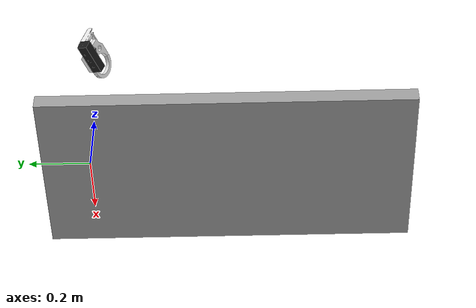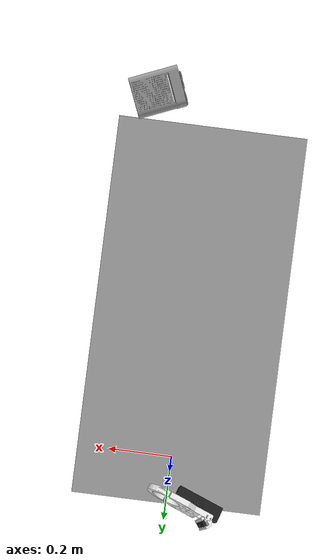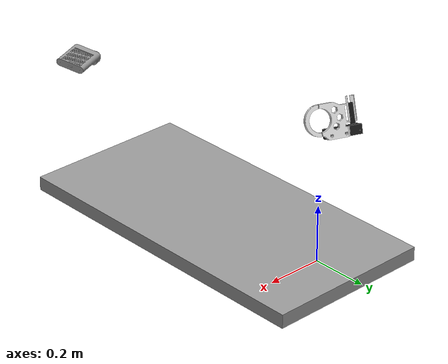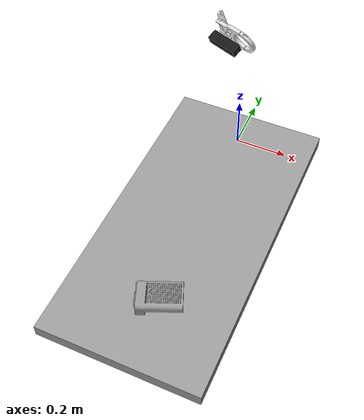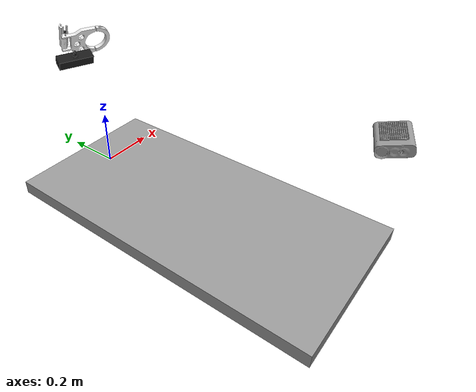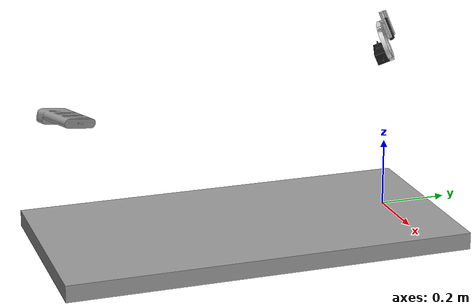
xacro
<?xml version="1.0"?>
<robot xmlns:xacro="http://www.ros.org/wiki/xacro"
      name="azure_test">>

  <!-- Add sensor -->
  <xacro:include filename="$(find azure_description)/urdf/azure_sensor.urdf.xacro" />

  <link name="world" />

  <link name="table">
    <visual>
      <origin rpy="0 0 0" xyz="0 -0.45 -0.03"/>
      <geometry>
        <box size="0.6 1.2 0.05"/>
      </geometry>
      <material name="grey"/>
    </visual>
    <surface>
      <friction>
        <ode>
          <mu>5</mu>
          <mu2>5</mu2>\
        </ode>
      </friction>
    </surface>
    <collision name='camera_collision'>
      <origin rpy="0 0 0" xyz="0 -0.45 -0.03"/>
      <geometry>
        <box size="0.6 1.2 0.05"/>
      </geometry>
    </collision>
  </link>

  <joint name="world_table_joint" type="fixed">
    <parent link="world"/>
    <child link="table"/>
  </joint>

  <joint type="fixed" name="table_camera_joint">
    <origin xyz="0.15 -1 0.41" rpy="0.2 0 3.54"/>
    <child link="v1_camera_mount_link"/>
    <parent link="table"/>
    <axis xyz="0 0 0" rpy="0 0 0"/>
    <limit effort="10000" velocity="1000"/>
    <dynamics damping="1.0" friction="1.0"/>
  </joint>

  <xacro:azure_sensor prefix="v1_"/>

    <xacro:include filename="$(find mobipick_description)/urdf/sensors/gripper_cam.urdf.xacro" />

  <joint name="v1_sensor_mount_joint" type="fixed">
    <origin xyz="0.0 0.0 .505" rpy="0.0 ${-3.14/8} 1.2" />
    <child link="v1_sensor_mount_link"/>
    <parent link="table"/>
  </joint>

  <xacro:gripper_cam prefix="v1_" />

</robot>

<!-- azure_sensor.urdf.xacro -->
<!-- From dimensions given at https://docs.microsoft.com/en-us/azure/kinect-dk/media/resources/hardware-specs-media/dimensions.png -->
<robot xmlns:xacro="http://www.ros.org/wiki/xacro" name="azure_sensor">

  <xacro:include filename="$(find azure_description)/urdf/azure_sensor.gazebo.xacro" />
  <xacro:property name="M_PI" value="3.1415926535897931" />

    <xacro:macro name="azure_sensor" params="prefix">

      <material name="grey">
        <color rgba="0.6 0.6 0.6 1" />
      </material>

      <link name="${prefix}camera_mount_link">
        <inertial>
          <origin
            xyz="0 0 0"
            rpy="0 0 0" />
          <mass
            value="0.440" />
          <inertia
            ixx="0.00063789"
            ixy="0"
            ixz="0"
            iyy="0.000444"
            iyz="0"
            izz="0.00097111" />
        </inertial>

        <visual>

          <origin
            xyz="0.062 0 0"
            rpy="0 0 ${M_PI/2}" />

          <geometry>
            <mesh
            filename="package://azure_description/meshes/base_link.STL" />
          </geometry>

<!-- for testing if mesh box visually looks in the right place -->

          <material name="grey" />
        </visual>

        <collision>

          <origin
            xyz="0 0 0"
            rpy="0 0 ${M_PI/2}" />

          <geometry>
            <box size="0.11 0.13 0.045" />
          </geometry>
        </collision>
      </link>

      <joint name="${prefix}azure_sensor_depth_joint" type="fixed">
        <origin rpy="0 0 0" xyz=".062 -0.0005  0.0068"/>
        <parent link="${prefix}camera_mount_link"/>
        <child link="${prefix}azure_sensor_depth_link"/>
      </joint>

      <link name="${prefix}azure_sensor_depth_link">
      </link>

      <joint name="${prefix}azure_sensor_rgb_joint" type="fixed">
        <origin rpy="0 0 0" xyz="0.062 -.0320 0"/>
        <parent link="${prefix}camera_mount_link"/>
        <child link="${prefix}azure_sensor_rgb_link"/>
      </joint>

      <link name="${prefix}azure_sensor_rgb_link">
      </link>

      <!-- kinect2 depth sensor frame -->
      <joint name="${prefix}azure_sensor_depth_optical_frame_joint" type="fixed">

        <origin xyz="0 0 0"
                rpy="${-M_PI/2+0} ${0.0+0}         ${-M_PI/2+0}"/>

        <parent link="${prefix}azure_sensor_depth_link"/>
        <child link="${prefix}azure_sensor_depth_optical_frame"/>
      </joint>

          <!-- kinect2 rgb sensor frame -->
      <joint name="${prefix}azure_sensor_rgb_optical_frame_joint" type="fixed">

        <origin xyz="0 0 0"
                rpy="${-M_PI/2+0} ${0.0+0}         ${-M_PI/2+0}" />

        <parent link="${prefix}azure_sensor_rgb_link"/>
        <child link="${prefix}azure_sensor_rgb_optical_frame"/>
      </joint>

      <link name="${prefix}azure_sensor_rgb_optical_frame"/>
      <link name="${prefix}azure_sensor_depth_optical_frame"/>

      <xacro:azure_sensor_rgb_gazebo
        link_name="${prefix}azure_sensor_rgb_link"
        frame_name="${prefix}azure_sensor_rgb_optical_frame"
        camera_name="${prefix}azure_sensor" />

      <xacro:azure_sensor_depth_gazebo
        link_name="${prefix}azure_sensor_depth_link"
        frame_name="${prefix}azure_sensor_depth_optical_frame"
        camera_name="${prefix}azure_sensor" />

  </xacro:macro>

</robot>

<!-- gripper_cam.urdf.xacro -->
<robot xmlns:xacro="http://ros.org/wiki/xacro">
  <xacro:include filename="$(find mobipick_description)/urdf/common_properties.urdf.xacro" />

  <xacro:property name="sensor_mount_mass" value="0.060" />
  <xacro:property name="sensor_mount_bracket_mass" value="0.040" />
  <xacro:property name="sensor_mount_pico_holder_mass" value="0.020" />
  <xacro:property name="astra_s_mass" value="0.300" />
  <xacro:property name="pico_flexx_mass" value="0.008" />

  <!-- distance between center of camera and camera_link -->
  <xacro:property name="astra_cam_py" value="0.0485"/>

  <xacro:macro name="gripper_cam" params="prefix">
    <xacro:sensor_mount prefix="${prefix}" />
    <joint name="${prefix}eef_main_cam_joint" type="fixed">
      <origin xyz="-0.032 0.033 -0.065" rpy="${pi/2} ${pi/2} ${-pi/2}" />
      <parent link="${prefix}sensor_mount_link"/>
      <child link="${prefix}eef_main_cam_link"/>
    </joint>

    <xacro:sensor_astra_mini_s camera_name="eef_main_cam" prefix="${prefix}" />

    <joint name="${prefix}eef_forward_cam_joint" type="fixed">
      <origin xyz="0.01545 0.0001 0.008" rpy="${-pi/2} 0.0 -0.03650298564336946" />
      <parent link="${prefix}sensor_mount_pico_holder_link"/>
      <child link="${prefix}eef_forward_cam_link"/>
    </joint>

    <xacro:sensor_pico_flexx camera_name="eef_forward_cam" prefix="${prefix}" />
  </xacro:macro>

  <xacro:macro name="sensor_mount" params="prefix">
    <link name="${prefix}sensor_mount_link">
      <visual>
        <geometry>
          <mesh filename="package://mobipick_description/meshes/sensors/sensor_mount.stl" scale="0.001 0.001 0.001" />
        </geometry>
        <xacro:insert_block name="material_almost_white" />
      </visual>
      <collision>
        <geometry>
          <mesh filename="package://mobipick_description/meshes/sensors/sensor_mount.stl" scale="0.001 0.001 0.001" />
        </geometry>
      </collision>
      <inertial>
        <mass value="${sensor_mount_mass}" />
        <origin xyz="-0.006815249 0.054455677 -0.011470736" rpy="0 0 0" />
        <inertia ixx="${sensor_mount_mass * 0.0018998439}"
          ixy="${sensor_mount_mass * 0.0000011290362}"
          ixz="${sensor_mount_mass * -0.000004403006}"
          iyy="${sensor_mount_mass * 0.0013046557}"
          iyz="${sensor_mount_mass * 0.00004099457}"
          izz="${sensor_mount_mass * 0.00062646503}" />
      </inertial>
    </link>
    <gazebo reference="${prefix}sensor_mount_link">
      <material>Gazebo/Grey</material>
    </gazebo>

    <joint name="${prefix}sensor_mount_bracket_joint" type="fixed">
      <origin xyz="0 0 0" rpy="0 0 0" />
      <parent link="${prefix}sensor_mount_link"/>
      <child link="${prefix}sensor_mount_bracket_link" />
    </joint>

    <link name="${prefix}sensor_mount_bracket_link">
      <visual>
        <geometry>
          <mesh filename="package://mobipick_description/meshes/sensors/sensor_mount_bracket.stl" scale="0.001 0.001 0.001" />
        </geometry>
        <xacro:insert_block name="material_almost_white" />
      </visual>
      <collision>
        <geometry>
          <mesh filename="package://mobipick_description/meshes/sensors/sensor_mount_bracket.stl" scale="0.001 0.001 0.001" />
        </geometry>
      </collision>
      <inertial>
        <mass value="${sensor_mount_bracket_mass}" />
        <origin xyz="-0.006750000 -0.030390745 0.000000062" rpy="0 0 0" />
        <inertia ixx="${sensor_mount_bracket_mass * 0.0010335255}"
          ixy="${sensor_mount_bracket_mass * 0.00000001092523}"
          ixz="${sensor_mount_bracket_mass * -0.00000012318317}"
          iyy="${sensor_mount_bracket_mass * 0.00087473292}"
          iyz="${sensor_mount_bracket_mass * -0.000000049903018}"
          izz="${sensor_mount_bracket_mass * 0.00019156915}" />
      </inertial>
    </link>
    <gazebo reference="${prefix}sensor_mount_bracket_link">
      <material>Gazebo/Grey</material>
    </gazebo>

    <joint name="${prefix}sensor_mount_pico_holder_joint" type="fixed">
      <origin xyz="-0.00325 0.11187 0" rpy="0 0 ${-33.5 / 180.0 * pi}" /> <!-- angle can be adjusted from -15 to -50 degrees (corresponds to downward angle of the pico flexx) -->
      <parent link="${prefix}sensor_mount_link"/>
      <child link="${prefix}sensor_mount_pico_holder_link" />
    </joint>

    <link name="${prefix}sensor_mount_pico_holder_link">
      <visual>
        <geometry>
          <mesh filename="package://mobipick_description/meshes/sensors/sensor_mount_pico_holder.stl" scale="0.001 0.001 0.001" />
        </geometry>
        <xacro:insert_block name="material_almost_white" />
      </visual>
      <collision>
        <geometry>
          <mesh filename="package://mobipick_description/meshes/sensors/sensor_mount_pico_holder.stl" scale="0.001 0.001 0.001" />
        </geometry>
      </collision>
      <inertial>
        <mass value="${sensor_mount_pico_holder_mass}" />
        <origin xyz="0.001609901 0.102978844 0.008159077" rpy="0 0 0" />
        <inertia ixx="${sensor_mount_pico_holder_mass * 0.00024619688}"
          ixy="${sensor_mount_pico_holder_mass * 0.000027175325}"
          ixz="${sensor_mount_pico_holder_mass * 0.000000014504396}"
          iyy="${sensor_mount_pico_holder_mass * 0.00023794332}"
          iyz="${sensor_mount_pico_holder_mass * -0.0000000015705397}"
          izz="${sensor_mount_pico_holder_mass * 0.000071808769}" />
      </inertial>
    </link>
    <gazebo reference="${prefix}sensor_mount_pico_holder_link">
      <material>Gazebo/Grey</material>
    </gazebo>
  </xacro:macro>

  <!-- ######################## Orbbec Astra Mini S ######################## -->
  <xacro:macro name="sensor_astra_mini_s" params="camera_name prefix">
    <link name="${prefix}${camera_name}_link">
      <visual>
        <origin xyz="0 0 0" />
        <geometry>
          <mesh filename="package://mobipick_description/meshes/sensors/astra_mini.stl"/>
        </geometry>
        <xacro:insert_block name="material_black" />
      </visual>
      <collision>
        <origin xyz="${-0.0325 / 2} ${-astra_cam_py} 0.0" />
        <geometry>
          <box size="0.0525 0.14 0.0575" /> <!-- padded 0.01 for moveit collision checking-->
        </geometry>
      </collision>
      <xacro:box_inertial mass="${astra_s_mass}" x="0.0325" y="0.12" z="0.0375">
        <origin xyz="${-0.0325 / 2} ${-astra_cam_py} 0.0" />
      </xacro:box_inertial>
    </link>
    <gazebo reference="${prefix}${camera_name}_link">
      <material>Gazebo/FlatBlack</material>
    </gazebo>

    <joint name="${prefix}${camera_name}_rgb_joint" type="fixed">
      <origin xyz="0 -0.045 0" rpy="0 0 0" />
      <parent link="${prefix}${camera_name}_link"/>
      <child link="${prefix}${camera_name}_rgb_frame" />
    </joint>
    <link name="${prefix}${camera_name}_rgb_frame"/>

    <joint name="${prefix}${camera_name}_rgb_optical_joint" type="fixed">
      <origin xyz="0 0 0" rpy="${-pi/2} 0 ${-pi/2}" />
      <parent link="${prefix}${camera_name}_rgb_frame" />
      <child link="${prefix}${camera_name}_rgb_optical_frame" />
    </joint>
    <link name="${prefix}${camera_name}_rgb_optical_frame"/>

    <joint name="${prefix}${camera_name}_rgb_logical_joint" type="fixed">
      <origin xyz="0 0 0" rpy="0 0 0" />
      <parent link="${prefix}${camera_name}_rgb_frame" />
      <child link="${prefix}${camera_name}_rgb_logical_frame" />
    </joint>
    <link name="${prefix}${camera_name}_rgb_logical_frame"/>

    <gazebo reference="${prefix}${camera_name}_rgb_logical_frame">
      <sensor name="logical_camera" type="logical_camera">
        <logical_camera>
          <near>0.05</near>
          <far>3.50</far>
          <horizontal_fov>${60.0 * pi/180.0}</horizontal_fov>
          <aspect_ratio>${640.0/480.0}</aspect_ratio>
        </logical_camera>
        <visualize>false</visualize>
        <always_on>true</always_on>
        <update_rate>10</update_rate>
        <plugin name="logical_camera_plugin" filename="liblogical_camera_plugin.so">
          <cameraName>${prefix}${camera_name}</cameraName>
          <imageTopicName>rgb/logical_image</imageTopicName>
          <frameName>${prefix}${camera_name}_rgb_logical_frame</frameName>
        </plugin>
      </sensor>
    </gazebo>

    <joint name="${prefix}${camera_name}_depth_joint" type="fixed">
      <origin xyz="0 -0.02 0" rpy="0 0 0" />
      <parent link="${prefix}${camera_name}_link"/>
      <child link="${prefix}${camera_name}_depth_frame" />
    </joint>
    <link name="${prefix}${camera_name}_depth_frame"/>

    <joint name="${prefix}${camera_name}_depth_optical_joint" type="fixed">
      <origin xyz="-0.025 0 0" rpy="0 0 0" />   <!-- calibration not necessary, depth_ir_offset used instead -->
      <parent link="${prefix}${camera_name}_rgb_optical_frame" />
      <child link="${prefix}${camera_name}_depth_optical_frame" />
    </joint>
    <link name="${prefix}${camera_name}_depth_optical_frame"/>

    <xacro:sim_3dsensor prefix="${prefix}"/>
  </xacro:macro>

  <xacro:macro name="sim_3dsensor" params="prefix">
    <gazebo reference="${prefix}${camera_name}_depth_frame">
      <sensor type="depth" name="${camera_name}">
        <always_on>true</always_on>
        <update_rate>1.0</update_rate>
        <camera>
          <horizontal_fov>${60.0 * pi/180.0}</horizontal_fov>
          <image>
            <format>B8G8R8</format>
            <width>640</width>
            <height>480</height>
          </image>
          <clip>
            <near>0.05</near>
            <far>3.50</far>  <!-- measured on real camera: 4.0 m on orthogonal surface, 3.5 m at 60 degrees angle -->
          </clip>
        </camera>
        <plugin name="kinect_${camera_name}_controller" filename="libgazebo_ros_openni_kinect.so">
          <cameraName>${camera_name}</cameraName>
          <alwaysOn>true</alwaysOn>
          <updateRate>1.0</updateRate>
          <imageTopicName>rgb/image_raw</imageTopicName>
          <depthImageTopicName>depth_registered/image_raw</depthImageTopicName>
          <pointCloudTopicName>depth_registered/points</pointCloudTopicName>
          <cameraInfoTopicName>rgb/camera_info</cameraInfoTopicName>
          <depthImageCameraInfoTopicName>depth_registered/camera_info</depthImageCameraInfoTopicName>
          <frameName>${prefix}${camera_name}_depth_optical_frame</frameName>
          <distortion_k1>0.0</distortion_k1>
          <distortion_k2>0.0</distortion_k2>
          <distortion_k3>0.0</distortion_k3>
          <distortion_t1>0.0</distortion_t1>
          <distortion_t2>0.0</distortion_t2>
          <pointCloudCutoff>0.35</pointCloudCutoff>  <!-- measured on real camera (same as data sheet) -->
          <pointCloudCutoffMax>3.50</pointCloudCutoffMax>
        </plugin>
      </sensor>
    </gazebo>
  </xacro:macro>

  <!-- ######################## PMD CamBoard pico flexx ######################## -->
  <xacro:macro name="sensor_pico_flexx" params="camera_name prefix">
    <link name="${prefix}${camera_name}_link">
      <visual>
        <origin xyz="0 0 0" />
        <geometry>
          <mesh filename="package://mobipick_description/meshes/sensors/pico_flexx.dae"/>
        </geometry>
        <xacro:insert_block name="material_black" />
      </visual>
      <collision>
        <origin xyz="${0.0072 / 2} 0.0 0.0" />
        <geometry>
          <box size="0.0072 0.068 0.017" />
        </geometry>
      </collision>
      <xacro:box_inertial mass="${pico_flexx_mass}" x="0.0072" y="0.068" z="0.017">
        <origin xyz="${0.0072 / 2} 0.0 0.0" />
      </xacro:box_inertial>
    </link>
    <gazebo reference="${prefix}${camera_name}_link">
      <material>Gazebo/FlatBlack</material>
    </gazebo>

    <joint name="${prefix}${camera_name}_depth_joint" type="fixed">
      <origin xyz="0.0072 0.0081 0.0" rpy="0 0 0" />
      <parent link="${prefix}${camera_name}_link"/>
      <child link="${prefix}${camera_name}_frame" />
    </joint>
    <link name="${prefix}${camera_name}_frame"/>

    <joint name="${prefix}${camera_name}_optical_joint" type="fixed">
      <origin xyz="0 0 0" rpy="${-pi/2} 0 ${-pi/2}" />
      <parent link="${prefix}${camera_name}_frame" />
      <child link="${prefix}${camera_name}_optical_frame" />
    </joint>
    <link name="${prefix}${camera_name}_optical_frame"/>

    <xacro:sim_pico_flexx prefix="${prefix}"/>
  </xacro:macro>

  <xacro:macro name="sim_pico_flexx" params="prefix">
    <gazebo reference="${prefix}${camera_name}_frame">
      <sensor type="depth" name="${camera_name}">
        <always_on>true</always_on>
        <update_rate>1.0</update_rate>
        <camera>
          <horizontal_fov>${60.0 * pi/180.0}</horizontal_fov>
          <image>
            <format>L8</format>
            <width>224</width>
            <height>171</height>
          </image>
          <clip>
            <near>0.10</near>
            <far>4.0</far>
          </clip>
        </camera>
        <plugin name="kinect_${camera_name}_controller" filename="libgazebo_ros_openni_kinect.so">
          <cameraName>${camera_name}</cameraName>
          <alwaysOn>true</alwaysOn>
          <updateRate>1.0</updateRate>
          <imageTopicName>image_mono8</imageTopicName>
          <depthImageTopicName>image_depth</depthImageTopicName>
          <pointCloudTopicName>points</pointCloudTopicName>
          <cameraInfoTopicName>camera_info</cameraInfoTopicName>
          <depthImageCameraInfoTopicName>depth/camera_info</depthImageCameraInfoTopicName>
          <frameName>${prefix}${camera_name}_optical_frame</frameName>
          <distortion_k1>0.0</distortion_k1>
          <distortion_k2>0.0</distortion_k2>
          <distortion_k3>0.0</distortion_k3>
          <distortion_t1>0.0</distortion_t1>
          <distortion_t2>0.0</distortion_t2>
          <pointCloudCutoff>0.10</pointCloudCutoff>
          <pointCloudCutoffMax>4.0</pointCloudCutoffMax>
        </plugin>
      </sensor>
    </gazebo>
  </xacro:macro>
</robot>

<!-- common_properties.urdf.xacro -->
<!--
  Various useful properties such as constants and materials
 -->
<robot name="xacro_properties" xmlns:xacro="http://ros.org/wiki/xacro">
  <!-- #################### RViz materials #################### -->
  <xacro:property name="material_white">
    <material name="white">
      <color rgba="1 1 1 1"/>
    </material>
  </xacro:property>
  <xacro:property name="material_almost_white">
    <material name="almost_white">
      <color rgba="0.9 0.9 0.9 1" />
    </material>
  </xacro:property>
  <xacro:property name="material_grey">
    <material name="grey">
      <color rgba="0.5 0.5 0.5 1"/>
    </material>
  </xacro:property>
  <xacro:property name="material_light_grey">
    <material name="light_grey">
      <color rgba="0.6 0.6 0.6 1"/>
    </material>
  </xacro:property>
  <xacro:property name="material_dark_grey">
    <material name="dark_grey">
      <color rgba="0.3 0.3 0.3 1"/>
    </material>
  </xacro:property>
  <xacro:property name="material_black">
    <material name="black">
      <color rgba="0.1 0.1 0.1 1"/>
    </material>
  </xacro:property>
  <xacro:property name="material_aluminum">
    <material name="aluminum">
      <color rgba="0.8 0.8 0.8 1" />
    </material>
  </xacro:property>
  <xacro:property name="material_silver">
    <material name="silver">
      <color rgba="0.79 0.82 0.93 1" />
    </material>
  </xacro:property>

  <!-- #################### inertials with origin #################### -->
  <!-- see https://secure.wikimedia.org/wikipedia/en/wiki/List_of_moment_of_inertia_tensors -->
  <xacro:macro name="sphere_inertial" params="radius mass *origin">
    <inertial>
      <mass value="${mass}" />
      <xacro:insert_block name="origin" />
      <inertia ixx="${0.4 * mass * radius * radius}" ixy="0.0" ixz="0.0"
        iyy="${0.4 * mass * radius * radius}" iyz="0.0"
        izz="${0.4 * mass * radius * radius}" />
    </inertial>
  </xacro:macro>

  <xacro:macro name="cylinder_inertial" params="radius length mass *origin">
    <inertial>
      <mass value="${mass}" />
      <xacro:insert_block name="origin" />
      <inertia ixx="${0.0833333 * mass * (3 * radius * radius + length * length)}" ixy="0.0" ixz="0.0"
        iyy="${0.0833333 * mass * (3 * radius * radius + length * length)}" iyz="0.0"
        izz="${0.5 * mass * radius * radius}" />
    </inertial>
  </xacro:macro>

  <xacro:macro name="box_inertial" params="x y z mass *origin">
    <inertial>
      <mass value="${mass}" />
      <xacro:insert_block name="origin" />
      <inertia ixx="${0.0833333 * mass * (y*y + z*z)}" ixy="0.0" ixz="0.0"
        iyy="${0.0833333 * mass * (x*x + z*z)}" iyz="0.0"
        izz="${0.0833333 * mass * (x*x + y*y)}" />
    </inertial>
  </xacro:macro>
</robot>
